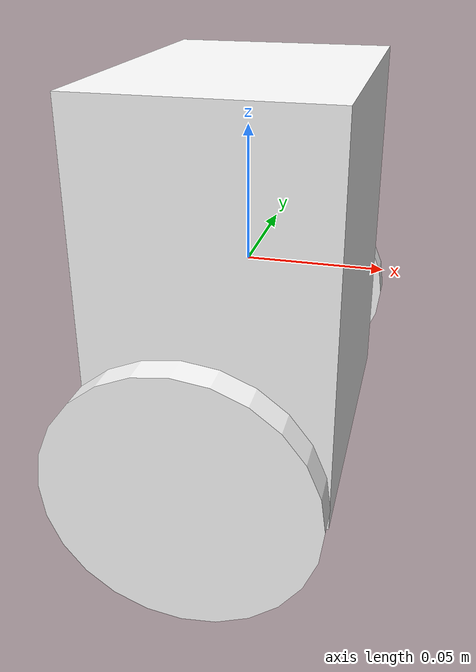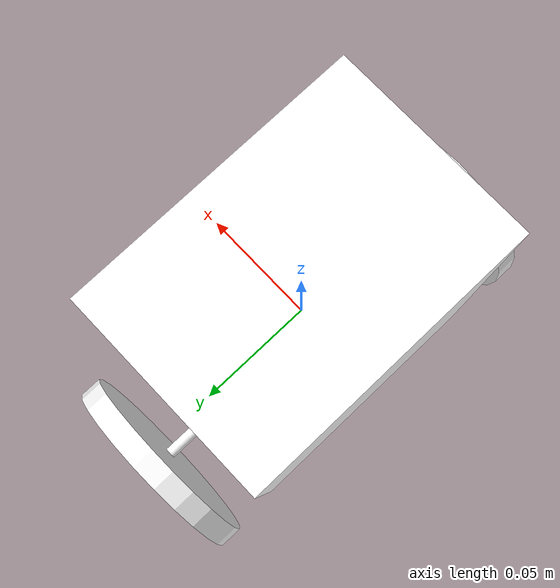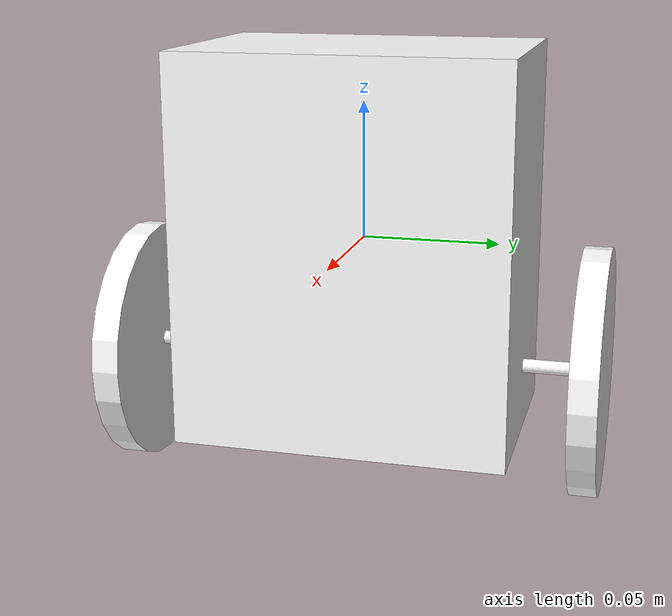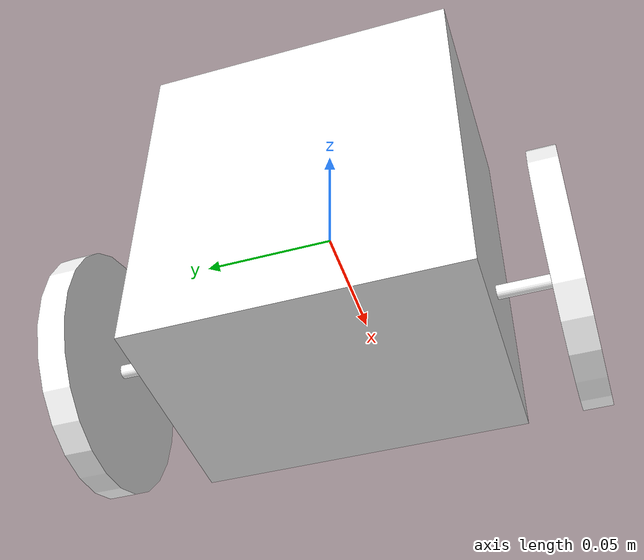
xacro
<?xml version="1.0"?>
<robot name="B-Robot_model"
	xmlns:xacro="http://ros.org/wiki/xacro">

    <link name="base_link">
        <visual>
                <geometry>
                    <box size="1e-6 1e-6 1e-6"/>
                </geometry>
            <origin xyz="0 0 0" rpy="0 0 0"/>
            <material name="white">
                <color rgba="1 1 1 1"/>
            </material>
        </visual>
        <collision>
            <geometry>
                    <box size="1e-6 1e-6 1e-6"/>
            </geometry>
        </collision>
        <inertial>
            <mass value="1e-6"/>
            <inertia ixx="1.0" ixy="0.0" ixz="0.0" iyy="1.0" iyz="0.0" izz="1.0"/>
        </inertial>
    </link>

    <link name="base_ment_link">
        <visual>
                <geometry>
                    <box size="0.085 0.12 0.14"/>
                </geometry>
            <origin xyz="0 0 0" rpy="0 0 0"/>
            <material name="white">
                <color rgba="1 1 1 1"/>
            </material>
        </visual>
        <collision>
            <geometry>
                    <box size="0.085 0.12 0.14"/>
            </geometry>
        </collision>
        <inertial>
            <mass value="1"/>
            <inertia ixx="1.0" ixy="0.0" ixz="0.0" iyy="1.0" iyz="0.0" izz="1.0"/>
        </inertial>
    </link>

    <joint name="base_link_to_base_ment_link_joint" type="fixed">
        <parent link="base_link"/>
        <child link="base_ment_link"/>
        <origin xyz="0 0 0" rpy="0 0 0"/>
    </joint>

    <link name="left_to_right_link">
        <visual>
                <geometry>
                    <cylinder length="0.16" radius="0.0025"/>
                </geometry>
            <origin xyz="0 0 0" rpy="0 0 0"/>
            <material name="white">
                <color rgba="1 1 1 1"/>
            </material>
        </visual>
        <collision>
            <geometry>
                    <cylinder length="0.16" radius="0.0025"/>
            </geometry>
        </collision>
        <inertial>
            <mass value="0.1"/>
            <inertia ixx="1.0" ixy="0.0" ixz="0.0" iyy="1.0" iyz="0.0" izz="1.0"/>
        </inertial>
    </link>

    <joint name="left_to_right_link_to_base_ment_link_joint" type="continuous">
        <parent link="base_ment_link"/>
        <child link="left_to_right_link"/>
        <origin xyz="0 0 -0.045" rpy="-1.57 0 0"/>
        <axis xyz="0 0 1"/>
    </joint>

    <link name="left_wheel_link">
        <visual>
                <geometry>
                    <cylinder length="0.01" radius="0.045"/>
                </geometry>
            <origin xyz="0 0 0" rpy="0 0 0"/>
            <material name="white">
                <color rgba="1 1 1 1"/>
            </material>
        </visual>
        <collision>
            <geometry>
                    <cylinder length="0.01" radius="0.045"/>
            </geometry>
        </collision>
        <inertial>
            <mass value="0.1"/>
            <inertia ixx="1.0" ixy="0.0" ixz="0.0" iyy="1.0" iyz="0.0" izz="1.0"/>
        </inertial>
    </link>

    <joint name="left_wheel_link_to_base_ment_link_joint" type="continuous">
        <parent link="left_to_right_link"/>
        <child link="left_wheel_link"/>
        <origin xyz="0 0 0.085" rpy="0 0 0"/>
        <axis xyz="0 0 1"/>
    </joint>

    <link name="right_wheel_link">
        <visual>
                <geometry>
                    <cylinder length="0.01" radius="0.045"/>
                </geometry>
            <origin xyz="0 0 0" rpy="0 0 0"/>
            <material name="white">
                <color rgba="1 1 1 1"/>
            </material>
        </visual>
        <collision>
            <geometry>
                    <cylinder length="0.01" radius="0.045"/>
            </geometry>
        </collision>
        <inertial>
            <mass value="0.1"/>
            <inertia ixx="1.0" ixy="0.0" ixz="0.0" iyy="1.0" iyz="0.0" izz="1.0"/>
        </inertial>
    </link>

    <joint name="right_wheel_link_to_base_ment_link_joint" type="continuous">
        <parent link="left_to_right_link"/>
        <child link="right_wheel_link"/>
        <origin xyz="0 0 -0.085" rpy="0 0 0"/>
        <axis xyz="0 0 1"/>
    </joint>

    <link name="imu_link">
        <visual>
                <geometry>
                    <box size="0.01 0.01 0.01" />
                </geometry>
            <origin xyz="0 0 0" rpy="0 0 0"/>
            <material name="white">
                <color rgba="1 1 1 1"/>
            </material>
        </visual>
        <collision>
            <geometry>
                    <box size="0.01 0.01 0.01" />
            </geometry>
        </collision>
        <inertial>
            <mass value="0.1"/>
            <inertia ixx="1.0" ixy="0.0" ixz="0.0" iyy="1.0" iyz="0.0" izz="1.0"/>
        </inertial>
    </link>

    <joint name="imu_link_left_wheel_link_joint" type="fixed">
        <parent link="base_ment_link"/>
        <child link="imu_link"/>
        <origin xyz="0 0 0" rpy="0 0 0"/>
    </joint>

</robot>
